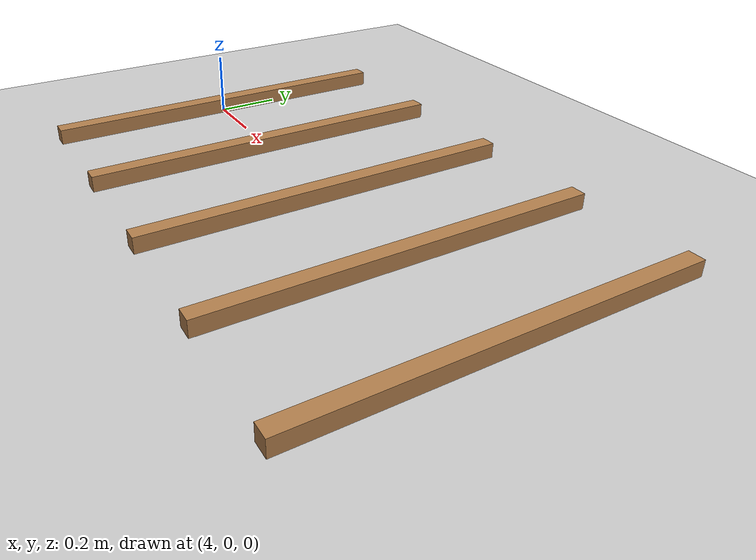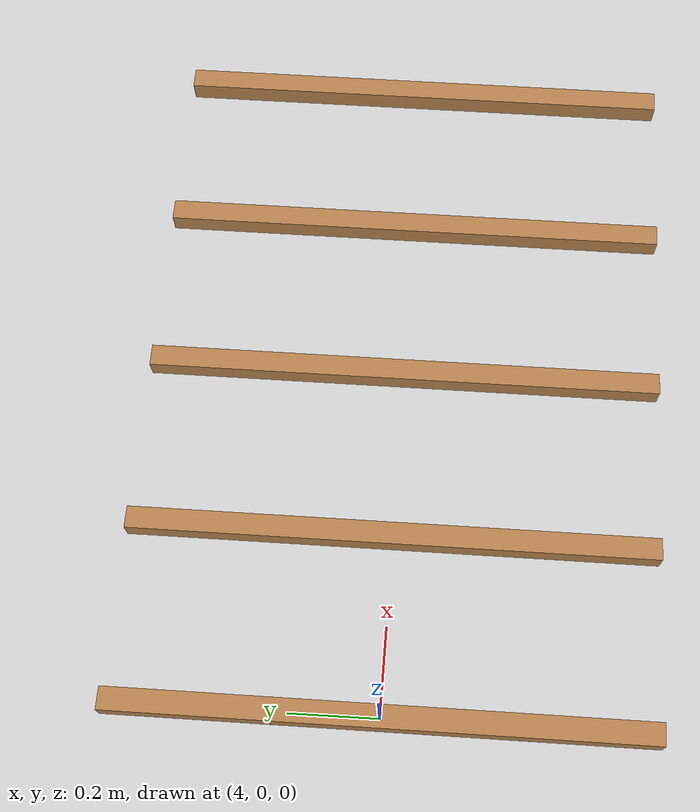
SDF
<sdf version="1.6">
 <world name="default">
  <light name="sun" type="directional">
   <pose>0 0 10 0 -0 0</pose>
   <diffuse>0.8 0.8 0.8 1</diffuse>
   <specular>0.2 0.2 0.2 1</specular>
   <attenuation>
    <range>1000</range>
    <constant>0.9</constant>
    <linear>0.01</linear>
    <quadratic>0.001</quadratic>
   </attenuation>
   <direction>-0.5 0.1 -0.9</direction>
  </light>
  <model name="ground_plane">
   <static>1</static>
   <link name="link">
    <collision name="collision">
     <geometry><plane><normal>0 0 1</normal><size>100 100</size></plane></geometry>
     <surface><friction><ode><mu>100</mu><mu2>50</mu2></ode></friction></surface>
    </collision>
    <visual name="visual">
     <cast_shadows>0</cast_shadows>
     <geometry><plane><normal>0 0 1</normal><size>100 100</size></plane></geometry>
     <material>
      <script><uri>file://media/materials/scripts/gazebo.material</uri><name>Gazebo/Grey</name></script>
     </material>
    </visual>
   </link>
  </model>
  <gravity>0 0 -9.8</gravity>
  <magnetic_field>6e-06 2.3e-05 -4.2e-05</magnetic_field>
  <atmosphere type="adiabatic"/>
  <physics name="default_physics" default="0" type="ode">
   <max_step_size>0.001</max_step_size>
   <real_time_factor>1</real_time_factor>
   <real_time_update_rate>1000</real_time_update_rate>
  </physics>
  <scene><ambient>0.4 0.4 0.4 1</ambient><background>0.7 0.7 0.7 1</background><shadows>1</shadows></scene>
  <audio><device>default</device></audio>
  <spherical_coordinates>
   <surface_model>EARTH_WGS84</surface_model>
   <latitude_deg>0</latitude_deg>
   <longitude_deg>0</longitude_deg>
   <elevation>0</elevation>
   <heading_deg>0</heading_deg>
  </spherical_coordinates>
  <model name="quad_tube">
   <pose>4.8 0 0 0 -0 0</pose>
   <link name="Stairs_1">
    <visual name="Stairs_1_Visual_0">
     <pose>-0.8 0 0.025 0 0 -1.5708</pose>
     <geometry><box><size>1.2 0.05 0.05</size></box></geometry>
     <material>
      <script><uri>file://media/materials/scripts/gazebo.material</uri><name>Gazebo/Wood</name></script>
      <ambient>0.760784 0.662745 0.627451 1</ambient>
     </material>
     <meta><layer>0</layer></meta>
    </visual>
    <collision name="Stairs_1_Collision_0">
     <geometry><box><size>1.2 0.05 0.05</size></box></geometry>
     <pose>-0.8 0 0.025 0 0 -1.5708</pose>
    </collision>
   </link>
   <link name="Stairs_10">
    <visual name="Stairs_10_Visual_0">
     <pose>0.8 0 0.025 0 -0 -1.5708</pose>
     <geometry><box><size>1.2 0.05 0.05</size></box></geometry>
     <material>
      <script><uri>file://media/materials/scripts/gazebo.material</uri><name>Gazebo/Wood</name></script>
      <ambient>0.996078 0.47451 0.0196078 1</ambient>
     </material>
     <meta><layer>0</layer></meta>
    </visual>
    <collision name="Stairs_10_Collision_0">
     <geometry><box><size>1.2 0.05 0.05</size></box></geometry>
     <pose>0.8 0 0.025 0 -0 -1.5708</pose>
    </collision>
   </link>
   <link name="Stairs_3">
    <visual name="Stairs_3_Visual_0">
     <pose>-0.4 0 0.025 0 -0 -1.5708</pose>
     <geometry><box><size>1.2 0.05 0.05</size></box></geometry>
     <material>
      <script><uri>file://media/materials/scripts/gazebo.material</uri><name>Gazebo/Wood</name></script>
      <ambient>0.996078 0.47451 0.0196078 1</ambient>
     </material>
     <meta><layer>0</layer></meta>
    </visual>
    <collision name="Stairs_3_Collision_0">
     <geometry><box><size>1.2 0.05 0.05</size></box></geometry>
     <pose>-0.4 0 0.025 0 -0 -1.5708</pose>
    </collision>
   </link>
   <link name="Stairs_6">
    <visual name="Stairs_6_Visual_0">
     <pose>0 0 0.025 0 -0 -1.5708</pose>
     <geometry><box><size>1.2 0.05 0.05</size></box></geometry>
     <material>
      <script><uri>file://media/materials/scripts/gazebo.material</uri><name>Gazebo/Wood</name></script>
      <ambient>0.996078 0.47451 0.0196078 1</ambient>
     </material>
     <meta><layer>0</layer></meta>
    </visual>
    <collision name="Stairs_6_Collision_0">
     <geometry><box><size>1.2 0.05 0.05</size></box></geometry>
     <pose>0 0 0.025 0 -0 -1.5708</pose>
    </collision>
   </link>
   <link name="Stairs_8">
    <visual name="Stairs_8_Visual_0">
     <pose>0.4 0 0.025 0 -0 -1.5708</pose>
     <geometry><box><size>1.2 0.05 0.05</size></box></geometry>
     <material>
      <script><uri>file://media/materials/scripts/gazebo.material</uri><name>Gazebo/Wood</name></script>
      <ambient>0.996078 0.47451 0.0196078 1</ambient>
     </material>
     <meta><layer>0</layer></meta>
    </visual>
    <collision name="Stairs_8_Collision_0">
     <geometry><box><size>1.2 0.05 0.05</size></box></geometry>
     <pose>0.4 0 0.025 0 -0 -1.5708</pose>
    </collision>
   </link>
   <static>1</static>
  </model>
 </world>
</sdf>
